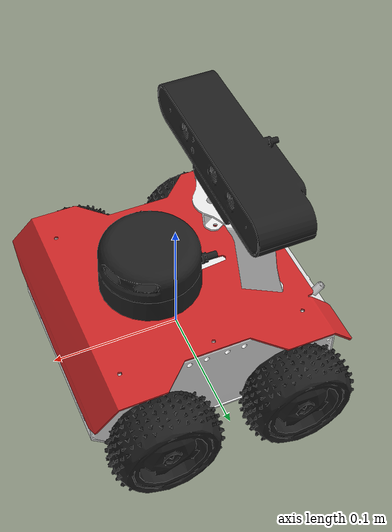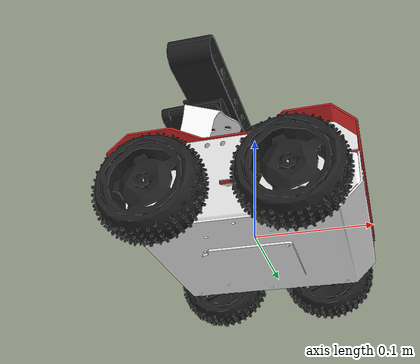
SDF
<sdf version='1.7'>
  <model name='rosbot'>
    <link name='dummy'>
      <inertial>
        <pose>-0 0 0.04003 0 -0 0</pose>
        <mass>5.01002</mass>
        <inertia>
          <ixx>0.0100024</ixx>
          <ixy>0.01</ixy>
          <ixz>3.8397e-08</ixz>
          <iyy>0.0100025</iyy>
          <iyz>0.01</iyz>
          <izz>0.01</izz>
        </inertia>
      </inertial>
      <collision name='dummy_fixed_joint_lump__collision_collision'>
        <pose>0 0 0.02 0 -0 0</pose>
        <geometry>
          <box>
            <size>0.2 0.15 0.04</size>
          </box>
        </geometry>
      </collision>
      <collision name='dummy_fixed_joint_lump__camera_link_collision_1'>
        <pose>-0.01 0 0.18 0 -0 0</pose>
        <geometry>
          <box>
            <size>0.001 0.001 0.001</size>
          </box>
        </geometry>
        <surface>
          <contact>
            <ode/>
          </contact>
          <friction>
            <ode/>
          </friction>
        </surface>
      </collision>
      <collision name='dummy_fixed_joint_lump__laser_collision_2'>
        <pose>0.02 0 0.058 1.5707 -0 1.56682</pose>
        <geometry>
          <mesh>
            <scale>0.001 0.001 0.001</scale>
            <uri>model://rosbot_description/meshes/rplidar.dae</uri>
          </mesh>
        </geometry>
        <surface>
          <contact>
            <ode/>
          </contact>
          <friction>
            <ode/>
          </friction>
        </surface>
      </collision>
      <visual name='dummy_fixed_joint_lump__base_link_visual_visual'>
        <pose>0 0 -0.02 1.5707 0 1.5707</pose>
        <geometry>
          <mesh>
            <scale>0.001 0.001 0.001</scale>
            <uri>model://rosbot_description/meshes/box.dae</uri>
          </mesh>
        </geometry>
        <material>
          <script>
            <name>Gazebo/White</name>
            <uri>file://media/materials/scripts/gazebo.material</uri>
          </script>
        </material>
      </visual>
      <visual name='dummy_fixed_joint_lump__camera_link_visual_1'>
        <pose>-0.04 0 0.15 1.5707 0 1.5707</pose>
        <geometry>
          <mesh>
            <scale>0.001 0.001 0.001</scale>
            <uri>model://rosbot_description/meshes/astra.dae</uri>
          </mesh>
        </geometry>
        <material>
          <script>
            <name>Gazebo/Black</name>
            <uri>file://media/materials/scripts/gazebo.material</uri>
          </script>
        </material>
      </visual>
      <visual name='dummy_fixed_joint_lump__laser_visual_2'>
        <pose>0.02 0 0.058 1.5707 -0 1.56682</pose>
        <geometry>
          <mesh>
            <scale>0.001 0.001 0.001</scale>
            <uri>model://rosbot_description/meshes/rplidar.dae</uri>
          </mesh>
        </geometry>
        <material>
          <script>
            <name>Gazebo/Black</name>
            <uri>file://media/materials/scripts/gazebo.material</uri>
          </script>
        </material>
      </visual>
      <visual name='dummy_fixed_joint_lump__top_visual_3'>
        <pose>0 0 0.055 1.5707 0 1.5707</pose>
        <geometry>
          <mesh>
            <scale>0.001 0.001 0.001</scale>
            <uri>model://rosbot_description/meshes/upper.dae</uri>
          </mesh>
        </geometry>
        <material>
          <script>
            <name>Gazebo/Red</name>
            <uri>file://media/materials/scripts/gazebo.material</uri>
          </script>
        </material>
      </visual>
      <sensor name='openni_camera_camera' type='depth'>
        <always_on>1</always_on>
        <visualize>1</visualize>
        <camera>
          <horizontal_fov>1.047</horizontal_fov>
          <image>
            <width>640</width>
            <height>480</height>
            <format>R8G8B8</format>
          </image>
          <depth_camera>
            <output>depths</output>
          </depth_camera>
          <clip>
            <near>0.1</near>
            <far>100</far>
          </clip>
        </camera>
        <plugin name='kinect_controller' filename='libgazebo_ros_openni_kinect.so'>
          <alwaysOn>1</alwaysOn>
          <updateRate>10.0</updateRate>
          <cameraName>camera</cameraName>
          <frameName>camera_depth_frame</frameName>
          <imageTopicName>rgb/image_raw</imageTopicName>
          <depthImageTopicName>depth/image_raw</depthImageTopicName>
          <pointCloudTopicName>depth/points</pointCloudTopicName>
          <cameraInfoTopicName>rgb/camera_info</cameraInfoTopicName>
          <depthImageCameraInfoTopicName>depth/camera_info</depthImageCameraInfoTopicName>
          <pointCloudCutoff>0.4</pointCloudCutoff>
          <hackBaseline>0.07</hackBaseline>
          <distortionK1>0.0</distortionK1>
          <distortionK2>0.0</distortionK2>
          <distortionK3>0.0</distortionK3>
          <distortionT1>0.0</distortionT1>
          <distortionT2>0.0</distortionT2>
          <CxPrime>0.0</CxPrime>
          <Cx>0.0</Cx>
          <Cy>0.0</Cy>
          <focalLength>0.0</focalLength>
        </plugin>
        <pose>-0.03 0 0.18 0 -0 0</pose>
      </sensor>
      <sensor name='range_fl' type='ray'>
        <update_rate>5</update_rate>
        <ray>
          <scan>
            <horizontal>
              <samples>5</samples>
              <resolution>1</resolution>
              <min_angle>-0.05</min_angle>
              <max_angle>0.05</max_angle>
            </horizontal>
            <vertical>
              <samples>5</samples>
              <resolution>1</resolution>
              <min_angle>-0.05</min_angle>
              <max_angle>0.05</max_angle>
            </vertical>
          </scan>
          <range>
            <min>0.01</min>
            <max>0.9</max>
            <resolution>0.01</resolution>
          </range>
        </ray>
        <plugin name='gazebo_ros_range' filename='libgazebo_ros_range.so'>
          <gaussianNoise>0.005</gaussianNoise>
          <alwaysOn>1</alwaysOn>
          <updateRate>5</updateRate>
          <topicName>range/fl</topicName>
          <frameName>range_fl</frameName>
          <fov>0.1</fov>
          <radiation>ultrasound</radiation>
        </plugin>
        <pose>0.1 0.05 0.01 0 -0 0.13</pose>
      </sensor>
      <sensor name='range_fr' type='ray'>
        <update_rate>5</update_rate>
        <ray>
          <scan>
            <horizontal>
              <samples>5</samples>
              <resolution>1</resolution>
              <min_angle>-0.05</min_angle>
              <max_angle>0.05</max_angle>
            </horizontal>
            <vertical>
              <samples>5</samples>
              <resolution>1</resolution>
              <min_angle>-0.05</min_angle>
              <max_angle>0.05</max_angle>
            </vertical>
          </scan>
          <range>
            <min>0.01</min>
            <max>0.9</max>
            <resolution>0.01</resolution>
          </range>
        </ray>
        <plugin name='gazebo_ros_range' filename='libgazebo_ros_range.so'>
          <gaussianNoise>0.005</gaussianNoise>
          <alwaysOn>1</alwaysOn>
          <updateRate>5</updateRate>
          <topicName>range/fr</topicName>
          <frameName>range_fr</frameName>
          <fov>0.1</fov>
          <radiation>ultrasound</radiation>
        </plugin>
        <pose>0.1 -0.05 0.01 0 0 -0.13</pose>
      </sensor>
      <sensor name='range_rl' type='ray'>
        <update_rate>5</update_rate>
        <ray>
          <scan>
            <horizontal>
              <samples>5</samples>
              <resolution>1</resolution>
              <min_angle>-0.05</min_angle>
              <max_angle>0.05</max_angle>
            </horizontal>
            <vertical>
              <samples>5</samples>
              <resolution>1</resolution>
              <min_angle>-0.05</min_angle>
              <max_angle>0.05</max_angle>
            </vertical>
          </scan>
          <range>
            <min>0.01</min>
            <max>0.9</max>
            <resolution>0.01</resolution>
          </range>
        </ray>
        <plugin name='gazebo_ros_range' filename='libgazebo_ros_range.so'>
          <gaussianNoise>0.005</gaussianNoise>
          <alwaysOn>1</alwaysOn>
          <updateRate>5</updateRate>
          <topicName>range/rl</topicName>
          <frameName>range_rl</frameName>
          <fov>0.1</fov>
          <radiation>ultrasound</radiation>
        </plugin>
        <pose>-0.1 0.05 0.01 0 -0 3.01</pose>
      </sensor>
      <sensor name='range_rr' type='ray'>
        <update_rate>5</update_rate>
        <ray>
          <scan>
            <horizontal>
              <samples>5</samples>
              <resolution>1</resolution>
              <min_angle>-0.05</min_angle>
              <max_angle>0.05</max_angle>
            </horizontal>
            <vertical>
              <samples>5</samples>
              <resolution>1</resolution>
              <min_angle>-0.05</min_angle>
              <max_angle>0.05</max_angle>
            </vertical>
          </scan>
          <range>
            <min>0.01</min>
            <max>0.9</max>
            <resolution>0.01</resolution>
          </range>
        </ray>
        <plugin name='gazebo_ros_range' filename='libgazebo_ros_range.so'>
          <gaussianNoise>0.005</gaussianNoise>
          <alwaysOn>1</alwaysOn>
          <updateRate>5</updateRate>
          <topicName>range/rr</topicName>
          <frameName>range_rr</frameName>
          <fov>0.1</fov>
          <radiation>ultrasound</radiation>
        </plugin>
        <pose>-0.1 -0.05 0.01 0 -0 -3.01319</pose>
      </sensor>
      <sensor name='head_rplidar_sensor' type='ray'>
        <visualize>0</visualize>
        <update_rate>40</update_rate>
        <ray>
          <scan>
            <horizontal>
              <samples>720</samples>
              <resolution>1</resolution>
              <min_angle>-3.14159</min_angle>
              <max_angle>3.14159</max_angle>
            </horizontal>
          </scan>
          <range>
            <min>0.2</min>
            <max>12</max>
            <resolution>0.01</resolution>
          </range>
          <noise>
            <type>gaussian</type>
            <mean>0</mean>
            <stddev>0.01</stddev>
          </noise>
        </ray>
        <plugin name='gazebo_ros_head_rplidar_controller' filename='libgazebo_ros_laser.so'>
          <topicName>scan</topicName>
          <frameName>laser</frameName>
        </plugin>
        <pose>0.02 0 0.058 0 -0 3.14</pose>
      </sensor>
      <gravity>1</gravity>
      <sensor name='imu_sensor' type='imu'>
        <always_on>1</always_on>
        <update_rate>10</update_rate>
        <visualize>1</visualize>
        <topic>imu</topic>
        <plugin name='imu_plugin' filename='libgazebo_ros_imu_sensor.so'>
          <topicName>imu</topicName>
          <bodyName>imu_link</bodyName>
          <updateRateHZ>10.0</updateRateHZ>
          <gaussianNoise>0.0</gaussianNoise>
          <xyzOffset>0 0 0</xyzOffset>
          <rpyOffset>0 0 0</rpyOffset>
          <frameName>imu_link</frameName>
        </plugin>
        <pose>0 0 0 0 -0 0</pose>
      </sensor>
    </link>
    <joint name='front_left_wheel_hinge' type='revolute'>
      <pose relative_to='dummy'>0.05 0.11 0 0 -0 0</pose>
      <parent>dummy</parent>
      <child>front_left_wheel</child>
      <axis>
        <xyz>0 1 0</xyz>
        <limit>
          <effort>1</effort>
          <velocity>10</velocity>
          <lower>-1e+16</lower>
          <upper>1e+16</upper>
        </limit>
        <dynamics>
          <spring_reference>0</spring_reference>
          <spring_stiffness>0</spring_stiffness>
        </dynamics>
      </axis>
    </joint>
    <link name='front_left_wheel'>
      <pose relative_to='front_left_wheel_hinge'>0 0 0 0 -0 0</pose>
      <inertial>
        <pose>0 0 0 0 1.5707 1.5707</pose>
        <mass>0.5</mass>
        <inertia>
          <ixx>0.001</ixx>
          <ixy>0</ixy>
          <ixz>0</ixz>
          <iyy>0.001</iyy>
          <iyz>0</iyz>
          <izz>0.001</izz>
        </inertia>
      </inertial>
      <collision name='front_left_wheel_fixed_joint_lump__collision_collision'>
        <pose>0 0 0 0 -0 1.5707</pose>
        <geometry>
          <mesh>
            <scale>0.001 0.001 0.001</scale>
            <uri>model://rosbot_description/meshes/wheel-v2.stl</uri>
          </mesh>
        </geometry>
      </collision>
      <visual name='front_left_wheel_visual_visual'>
        <pose>0 0 0 0 -0 1.5707</pose>
        <geometry>
          <mesh>
            <scale>0.001 0.001 0.001</scale>
            <uri>model://rosbot_description/meshes/wheel.dae</uri>
          </mesh>
        </geometry>
        <material>
          <script>
            <name>Gazebo/Black</name>
            <uri>file://media/materials/scripts/gazebo.material</uri>
          </script>
        </material>
      </visual>
    </link>
    <joint name='front_right_wheel_hinge' type='revolute'>
      <pose relative_to='dummy'>0.05 -0.11 0 0 -0 0</pose>
      <parent>dummy</parent>
      <child>front_right_wheel</child>
      <axis>
        <xyz>0 1 0</xyz>
        <limit>
          <effort>1</effort>
          <velocity>10</velocity>
          <lower>-1e+16</lower>
          <upper>1e+16</upper>
        </limit>
        <dynamics>
          <spring_reference>0</spring_reference>
          <spring_stiffness>0</spring_stiffness>
        </dynamics>
      </axis>
    </joint>
    <link name='front_right_wheel'>
      <pose relative_to='front_right_wheel_hinge'>0 0 0 0 -0 0</pose>
      <inertial>
        <pose>0 0 0 0 1.5707 1.5707</pose>
        <mass>0.5</mass>
        <inertia>
          <ixx>0.001</ixx>
          <ixy>0</ixy>
          <ixz>0</ixz>
          <iyy>0.001</iyy>
          <iyz>0</iyz>
          <izz>0.001</izz>
        </inertia>
      </inertial>
      <collision name='front_right_wheel_fixed_joint_lump__collision_collision'>
        <pose>0 0 0 0 0 -1.5707</pose>
        <geometry>
          <mesh>
            <scale>0.001 0.001 0.001</scale>
            <uri>model://rosbot_description/meshes/wheel-v2.stl</uri>
          </mesh>
        </geometry>
      </collision>
      <visual name='front_right_wheel_visual_visual'>
        <pose>0 0 0 0 0 -1.5707</pose>
        <geometry>
          <mesh>
            <scale>0.001 0.001 0.001</scale>
            <uri>model://rosbot_description/meshes/wheel.dae</uri>
          </mesh>
        </geometry>
        <material>
          <script>
            <name>Gazebo/Black</name>
            <uri>file://media/materials/scripts/gazebo.material</uri>
          </script>
        </material>
      </visual>
    </link>
    <joint name='rear_left_wheel_hinge' type='revolute'>
      <pose relative_to='dummy'>-0.055 0.11 0 0 -0 0</pose>
      <parent>dummy</parent>
      <child>rear_left_wheel</child>
      <axis>
        <xyz>0 1 0</xyz>
        <limit>
          <effort>1</effort>
          <velocity>10</velocity>
          <lower>-1e+16</lower>
          <upper>1e+16</upper>
        </limit>
        <dynamics>
          <spring_reference>0</spring_reference>
          <spring_stiffness>0</spring_stiffness>
        </dynamics>
      </axis>
    </joint>
    <link name='rear_left_wheel'>
      <pose relative_to='rear_left_wheel_hinge'>0 0 0 0 -0 0</pose>
      <inertial>
        <pose>0 0 0 0 1.5707 1.5707</pose>
        <mass>0.5</mass>
        <inertia>
          <ixx>0.001</ixx>
          <ixy>0</ixy>
          <ixz>0</ixz>
          <iyy>0.001</iyy>
          <iyz>0</iyz>
          <izz>0.001</izz>
        </inertia>
      </inertial>
      <collision name='rear_left_wheel_fixed_joint_lump__collision_collision'>
        <pose>0 0 0 0 -0 1.5707</pose>
        <geometry>
          <mesh>
            <scale>0.001 0.001 0.001</scale>
            <uri>model://rosbot_description/meshes/wheel-v2.stl</uri>
          </mesh>
        </geometry>
      </collision>
      <visual name='rear_left_wheel_visual_visual'>
        <pose>0 0 0 0 -0 1.5707</pose>
        <geometry>
          <mesh>
            <scale>0.001 0.001 0.001</scale>
            <uri>model://rosbot_description/meshes/wheel.dae</uri>
          </mesh>
        </geometry>
        <material>
          <script>
            <name>Gazebo/Black</name>
            <uri>file://media/materials/scripts/gazebo.material</uri>
          </script>
        </material>
      </visual>
    </link>
    <joint name='rear_right_wheel_hinge' type='revolute'>
      <pose relative_to='dummy'>-0.055 -0.11 0 0 -0 0</pose>
      <parent>dummy</parent>
      <child>rear_right_wheel</child>
      <axis>
        <xyz>0 1 0</xyz>
        <limit>
          <effort>1</effort>
          <velocity>10</velocity>
          <lower>-1e+16</lower>
          <upper>1e+16</upper>
        </limit>
        <dynamics>
          <spring_reference>0</spring_reference>
          <spring_stiffness>0</spring_stiffness>
        </dynamics>
      </axis>
    </joint>
    <link name='rear_right_wheel'>
      <pose relative_to='rear_right_wheel_hinge'>0 0 0 0 -0 0</pose>
      <inertial>
        <pose>0 0 0 0 1.5707 1.5707</pose>
        <mass>0.5</mass>
        <inertia>
          <ixx>0.001</ixx>
          <ixy>0</ixy>
          <ixz>0</ixz>
          <iyy>0.001</iyy>
          <iyz>0</iyz>
          <izz>0.001</izz>
        </inertia>
      </inertial>
      <collision name='rear_right_wheel_fixed_joint_lump__collision_collision'>
        <pose>0 0 0 0 0 -1.5707</pose>
        <geometry>
          <mesh>
            <scale>0.001 0.001 0.001</scale>
            <uri>model://rosbot_description/meshes/wheel-v2.stl</uri>
          </mesh>
        </geometry>
      </collision>
      <visual name='rear_right_wheel_visual_visual'>
        <pose>0 0 0 0 0 -1.5707</pose>
        <geometry>
          <mesh>
            <scale>0.001 0.001 0.001</scale>
            <uri>model://rosbot_description/meshes/wheel.dae</uri>
          </mesh>
        </geometry>
        <material>
          <script>
            <name>Gazebo/Black</name>
            <uri>file://media/materials/scripts/gazebo.material</uri>
          </script>
        </material>
      </visual>
    </link>
    <plugin name='skid_steer_drive_controller' filename='libgazebo_ros_skid_steer_drive.so'>
      <robotNamespace>/</robotNamespace>
      <updateRate>10.0</updateRate>
      <robotBaseFrame>/base_link</robotBaseFrame>
      <wheelSeparation>0.20</wheelSeparation>
      <wheelDiameter>0.08</wheelDiameter>
      <torque>5</torque>
      <leftFrontJoint>front_left_wheel_hinge</leftFrontJoint>
      <rightFrontJoint>front_right_wheel_hinge</rightFrontJoint>
      <leftRearJoint>rear_left_wheel_hinge</leftRearJoint>
      <rightRearJoint>rear_right_wheel_hinge</rightRearJoint>
      <topicName>cmd_vel</topicName>
      <commandTopic>cmd_vel</commandTopic>
      <broadcastTF>1</broadcastTF>
      <odometryTopic>odom</odometryTopic>
      <odometryFrame>/odom</odometryFrame>
      <covariance_x>0.000100</covariance_x>
      <covariance_y>0.000100</covariance_y>
      <covariance_yaw>0.010000</covariance_yaw>
    </plugin>
    <static>0</static>
    <plugin name='gazebo_ros_control' filename='libgazebo_ros_control.so'>
      <legacyModeNS>1</legacyModeNS>
    </plugin>
  </model>
</sdf>
